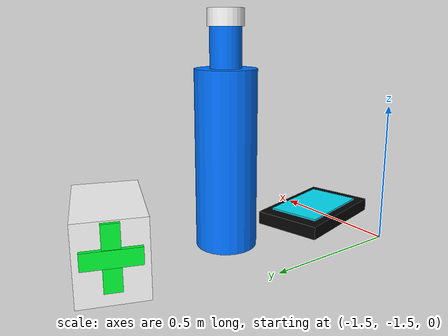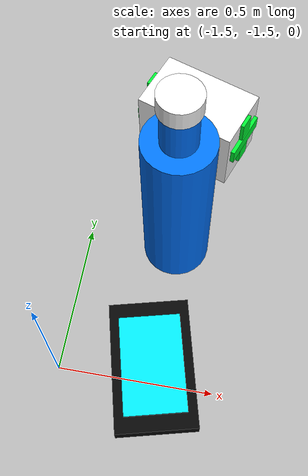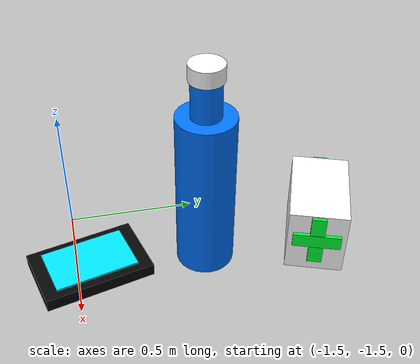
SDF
<sdf version="1.6">
 <world name="default">
  <plugin filename="gz-sim-physics-system" name="gz::sim::systems::Physics"/>
  <plugin filename="gz-sim-user-commands-system" name="gz::sim::systems::UserCommands"/>
  <plugin filename="gz-sim-scene-broadcaster-system" name="gz::sim::systems::SceneBroadcaster"/>
  <plugin filename="gz-sim-sensors-system" name="gz::sim::systems::Sensors">
   <render_engine>ogre2</render_engine>
  </plugin>
  <plugin filename="gz-sim-imu-system" name="gz::sim::systems::Imu"/>
  <gravity>0 0 -9.8</gravity>
  <magnetic_field>6e-06 2.3e-05 -4.2e-05</magnetic_field>
  <atmosphere type="adiabatic"/>
  <physics name="default_physics" default="0" type="ode">
   <max_step_size>0.001</max_step_size>
   <real_time_factor>1</real_time_factor>
   <real_time_update_rate>1000</real_time_update_rate>
  </physics>
  <scene>
   <ambient>0.4 0.4 0.4 1</ambient>
   <background>0.7 0.7 0.7 1</background>
   <shadows>false</shadows>
   <grid>false</grid>
   <origin_visual>false</origin_visual>
  </scene>
  <spherical_coordinates>
   <surface_model>EARTH_WGS84</surface_model>
   <latitude_deg>0</latitude_deg>
   <longitude_deg>0</longitude_deg>
   <elevation>0</elevation>
   <heading_deg>0</heading_deg>
  </spherical_coordinates>
  <include>
   <uri>model://a1an_assistive_bottle</uri>
   <name>a1an_demo_bottle</name>
   <pose>-1.20 -1.00 0 0 0 0</pose>
  </include>
  <include>
   <uri>model://a1an_assistive_phone</uri>
   <name>a1an_demo_phone</name>
   <pose>-1.20 -1.45 0 0 0 0.25</pose>
  </include>
  <include>
   <uri>model://a1an_assistive_medicine_box</uri>
   <name>a1an_demo_medicine_box</name>
   <pose>-1.20 -0.55 0 0 0 -0.35</pose>
  </include>
  <light name="LivingRoom_CeilingLight_0" type="point">
   <pose>1.194296 4.155759 2.2 0 -0 0</pose>
   <diffuse>0.5 0.5 0.5 1</diffuse>
   <specular>0.1 0.1 0.1 1</specular>
   <attenuation>
    <range>20</range>
    <constant>0.32</constant>
    <linear>0.01</linear>
    <quadratic>0.03</quadratic>
   </attenuation>
   <cast_shadows>0</cast_shadows>
   <direction>0 0 -1</direction>
  </light>
  <light name="LivingRoom_CeilingLight_1" type="point">
   <pose>1.194296 -1.589959 2.2 0 -0 0</pose>
   <diffuse>0.5 0.5 0.5 1</diffuse>
   <specular>0.1 0.1 0.1 1</specular>
   <attenuation>
    <range>20</range>
    <constant>0.05</constant>
    <linear>0.01</linear>
    <quadratic>0.09</quadratic>
   </attenuation>
   <cast_shadows>0</cast_shadows>
   <direction>0 0 -1</direction>
  </light>
  <light name="LivingRoom_WallLight_0" type="point">
   <pose>1.76956 -5.444370 2.2 0 -0 0</pose>
   <diffuse>0.24 0.24 0.24 1</diffuse>
   <specular>0.1 0.1 0.1 1</specular>
   <attenuation>
    <range>20</range>
    <constant>0.12</constant>
    <linear>0.00</linear>
    <quadratic>0.03</quadratic>
   </attenuation>
   <direction>0 0 -1</direction>
  </light>
  <light name="LivingRoom_WallLight_1" type="point">
   <pose>-0.13826 -5.444370 2.2 0 -0 0</pose>
   <diffuse>0.24 0.24 0.24 1</diffuse>
   <specular>0.1 0.1 0.1 1</specular>
   <attenuation>
    <range>20</range>
    <constant>0.12</constant>
    <linear>0.00</linear>
    <quadratic>0.03</quadratic>
   </attenuation>
   <direction>0 0 -1</direction>
  </light>
  <light name="TV_Light_0" type="point">
   <pose>0.8269 -4.939577 1.1 0 -0 0</pose>
   <diffuse>0.31372 0.31372 0.34901 1</diffuse>
   <specular>0.1 0.1 0.1 1</specular>
   <attenuation>
    <range>3</range>
    <constant>0.10</constant>
    <linear>0.04</linear>
    <quadratic>0.50</quadratic>
   </attenuation>
   <direction>0 0 -1</direction>
  </light>
  <light name="BedRoom_Portrait_Light_0" type="spot">
   <pose>-6.190379 -1.829697 1.5587 0.3 -0 0.0</pose>
   <diffuse>0.5 0.5 0.5 1</diffuse>
   <specular>0.1 0.1 0.1 1</specular>
   <attenuation>
    <range>20</range>
    <constant>0.50</constant>
    <linear>0.01</linear>
    <quadratic>0.00</quadratic>
   </attenuation>
   <spot><inner_angle>0.6</inner_angle><outer_angle>1.0</outer_angle><falloff>1.0</falloff></spot>
   <direction>0 0 -1</direction>
  </light>
  <light name="BedRoom_CeilingLight_0" type="point">
   <pose>-6.451061 -0.692040 2.000000 0 -0 0</pose>
   <diffuse>0.5 0.5 0.5 1</diffuse>
   <specular>0.1 0.1 0.1 1</specular>
   <attenuation>
    <range>20</range>
    <constant>0.32</constant>
    <linear>0.01</linear>
    <quadratic>0.03</quadratic>
   </attenuation>
   <cast_shadows>0</cast_shadows>
   <direction>0 0 -1</direction>
  </light>
  <light name="Kitchen_CeilingLight_0" type="point">
   <pose>7.8582 -1.5905 2.280000 0 -0 0</pose>
   <diffuse>0.5 0.5 0.5 1</diffuse>
   <specular>0.1 0.1 0.1 1</specular>
   <attenuation>
    <range>20</range>
    <constant>0.3</constant>
    <linear>0.01</linear>
    <quadratic>0.01</quadratic>
   </attenuation>
   <cast_shadows>0</cast_shadows>
   <direction>0 0 -1</direction>
  </light>
 </world>
</sdf>

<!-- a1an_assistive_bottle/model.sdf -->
<sdf version="1.6">
  <model name="a1an_assistive_bottle">
    <static>true</static>
    <link name="bottle_link">
      <inertial>
        <mass>0.2</mass>
        <inertia>
          <ixx>0.001</ixx>
          <iyy>0.001</iyy>
          <izz>0.001</izz>
        </inertia>
      </inertial>

      <collision name="body_collision">
        <pose>0 0 0.32 0 0 0</pose>
        <geometry>
          <cylinder>
            <radius>0.11</radius>
            <length>0.64</length>
          </cylinder>
        </geometry>
      </collision>
      <visual name="body_visual">
        <pose>0 0 0.32 0 0 0</pose>
        <geometry>
          <cylinder>
            <radius>0.11</radius>
            <length>0.64</length>
          </cylinder>
        </geometry>
        <material>
          <ambient>0.0 0.35 0.95 1</ambient>
          <diffuse>0.0 0.45 1.0 1</diffuse>
          <specular>0.2 0.2 0.2 1</specular>
        </material>
      </visual>

      <collision name="neck_collision">
        <pose>0 0 0.70 0 0 0</pose>
        <geometry>
          <cylinder>
            <radius>0.056</radius>
            <length>0.16</length>
          </cylinder>
        </geometry>
      </collision>
      <visual name="neck_visual">
        <pose>0 0 0.70 0 0 0</pose>
        <geometry>
          <cylinder>
            <radius>0.056</radius>
            <length>0.16</length>
          </cylinder>
        </geometry>
        <material>
          <ambient>0.0 0.35 0.95 1</ambient>
          <diffuse>0.0 0.45 1.0 1</diffuse>
        </material>
      </visual>

      <visual name="cap_visual">
        <pose>0 0 0.81 0 0 0</pose>
        <geometry>
          <cylinder>
            <radius>0.064</radius>
            <length>0.06</length>
          </cylinder>
        </geometry>
        <material>
          <ambient>0.95 0.95 0.95 1</ambient>
          <diffuse>1.0 1.0 1.0 1</diffuse>
        </material>
      </visual>
    </link>
  </model>
</sdf>

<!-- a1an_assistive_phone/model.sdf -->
<sdf version="1.6">
  <model name="a1an_assistive_phone">
    <static>true</static>
    <link name="phone_link">
      <inertial>
        <mass>0.18</mass>
        <inertia>
          <ixx>0.001</ixx>
          <iyy>0.001</iyy>
          <izz>0.001</izz>
        </inertia>
      </inertial>
      <collision name="collision">
        <pose>0 0 0.025 0 0 0</pose>
        <geometry>
          <box>
            <size>0.26 0.42 0.05</size>
          </box>
        </geometry>
      </collision>
      <visual name="body_visual">
        <pose>0 0 0.025 0 0 0</pose>
        <geometry>
          <box>
            <size>0.26 0.42 0.05</size>
          </box>
        </geometry>
        <material>
          <ambient>0.01 0.01 0.01 1</ambient>
          <diffuse>0.02 0.02 0.02 1</diffuse>
          <specular>0.4 0.4 0.4 1</specular>
        </material>
      </visual>
      <visual name="screen_visual">
        <pose>0 0 0.055 0 0 0</pose>
        <geometry>
          <box>
            <size>0.20 0.32 0.006</size>
          </box>
        </geometry>
        <material>
          <ambient>0.0 0.75 0.85 1</ambient>
          <diffuse>0.0 0.9 1.0 1</diffuse>
          <emissive>0.0 0.15 0.18 1</emissive>
        </material>
      </visual>
    </link>
  </model>
</sdf>

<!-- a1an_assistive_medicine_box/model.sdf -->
<sdf version="1.6">
  <model name="a1an_assistive_medicine_box">
    <static>true</static>
    <link name="medicine_box_link">
      <inertial>
        <mass>0.12</mass>
        <inertia>
          <ixx>0.001</ixx>
          <iyy>0.001</iyy>
          <izz>0.001</izz>
        </inertia>
      </inertial>
      <collision name="collision">
        <pose>0 0 0.13 0 0 0</pose>
        <geometry>
          <box>
            <size>0.36 0.22 0.26</size>
          </box>
        </geometry>
      </collision>
      <visual name="box_visual">
        <pose>0 0 0.13 0 0 0</pose>
        <geometry>
          <box>
            <size>0.36 0.22 0.26</size>
          </box>
        </geometry>
        <material>
          <ambient>0.95 0.95 0.95 1</ambient>
          <diffuse>1.0 1.0 1.0 1</diffuse>
        </material>
      </visual>
      <visual name="green_cross_vertical">
        <pose>0.186 0 0.15 0 1.5708 0</pose>
        <geometry>
          <box>
            <size>0.21 0.055 0.012</size>
          </box>
        </geometry>
        <material>
          <ambient>0.0 0.85 0.15 1</ambient>
          <diffuse>0.0 1.0 0.2 1</diffuse>
        </material>
      </visual>
      <visual name="green_cross_horizontal">
        <pose>0.188 0 0.15 0 1.5708 0</pose>
        <geometry>
          <box>
            <size>0.055 0.18 0.014</size>
          </box>
        </geometry>
        <material>
          <ambient>0.0 0.85 0.15 1</ambient>
          <diffuse>0.0 1.0 0.2 1</diffuse>
        </material>
      </visual>
      <visual name="green_cross_back_vertical">
        <pose>-0.186 0 0.15 0 1.5708 0</pose>
        <geometry>
          <box>
            <size>0.21 0.055 0.012</size>
          </box>
        </geometry>
        <material>
          <ambient>0.0 0.85 0.15 1</ambient>
          <diffuse>0.0 1.0 0.2 1</diffuse>
        </material>
      </visual>
      <visual name="green_cross_back_horizontal">
        <pose>-0.188 0 0.15 0 1.5708 0</pose>
        <geometry>
          <box>
            <size>0.055 0.18 0.014</size>
          </box>
        </geometry>
        <material>
          <ambient>0.0 0.85 0.15 1</ambient>
          <diffuse>0.0 1.0 0.2 1</diffuse>
        </material>
      </visual>
    </link>
  </model>
</sdf>
